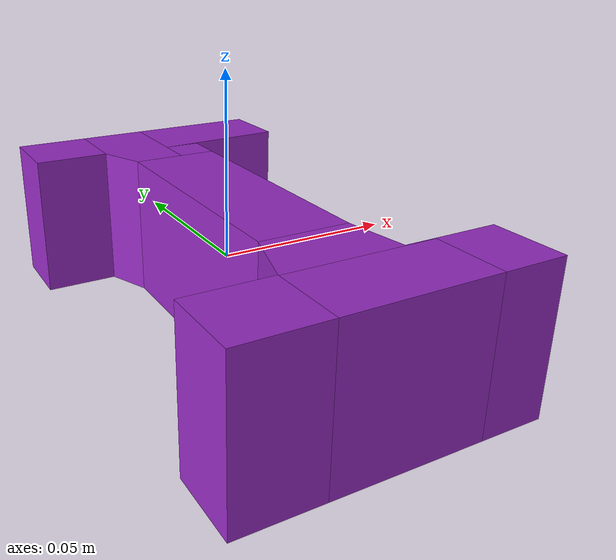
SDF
<?xml version='1.0' encoding='UTF-8'?>
<!-- This SDF was autogenerated by obj_to_drake_sdf.py -->
<sdf version="1.7">
  <model name="smaller_i">
    <link name="smaller_i">
      <inertial>
        <pose>0 0 0 0 0 0</pose>
        <mass>0.2</mass>
        <inertia>
          <ixx>0.000499957</ixx>
          <iyy>8.8613584e-05</iyy>
          <izz>0.00053523725</izz>
          <ixy>-7.3334235e-07</ixy>
          <ixz>-1.0219036e-22</ixz>
          <iyz>1.8824904e-22</iyz>
        </inertia>
      </inertial>
      <visual name="convex_0">
        <pose>0 0 0 0 0 0</pose>
        <geometry>
          <mesh>
            <uri>smaller_i_convex_0.obj</uri>
          </mesh>
        </geometry>
        <material>
          <diffuse>0.5882352941176471 0.17254901960784313 0.7607843137254902 1</diffuse>
        </material>
      </visual>
      <collision name="convex_0_volume">
        <pose>0 0 0 0 0 0</pose>
        <geometry>
          <mesh>
            <uri>smaller_i_convex_0.obj</uri>
          </mesh>
        </geometry>
        <drake:proximity_properties xmlns:drake="uri:drake">
          <drake:compliant_hydroelastic/>
          <drake:hydroelastic_modulus> 3.0e7 </drake:hydroelastic_modulus>
          <drake:mesh_resolution_hint> 0.02 </drake:mesh_resolution_hint>
          <drake:hunt_crossley_dissipation>10</drake:hunt_crossley_dissipation>
          <drake:mu_dynamic>0.5</drake:mu_dynamic>
        </drake:proximity_properties>
      </collision>
      <visual name="convex_1">
        <pose>0 0 0 0 0 0</pose>
        <geometry>
          <mesh>
            <uri>smaller_i_convex_1.obj</uri>
          </mesh>
        </geometry>
        <material>
          <diffuse>0.5882352941176471 0.17254901960784313 0.7607843137254902 1</diffuse>
        </material>
      </visual>
      <collision name="convex_1_volume">
        <pose>0 0 0 0 0 0</pose>
        <geometry>
          <mesh>
            <uri>smaller_i_convex_1.obj</uri>
          </mesh>
        </geometry>
        <drake:proximity_properties xmlns:drake="uri:drake">
          <drake:compliant_hydroelastic/>
          <drake:hydroelastic_modulus> 3.0e7 </drake:hydroelastic_modulus>
          <drake:mesh_resolution_hint> 0.02 </drake:mesh_resolution_hint>
          <drake:hunt_crossley_dissipation>10</drake:hunt_crossley_dissipation>
          <drake:mu_dynamic>0.5</drake:mu_dynamic>
        </drake:proximity_properties>
      </collision>
      <visual name="convex_2">
        <pose>0 0 0 0 0 0</pose>
        <geometry>
          <mesh>
            <uri>smaller_i_convex_2.obj</uri>
          </mesh>
        </geometry>
        <material>
          <diffuse>0.5882352941176471 0.17254901960784313 0.7607843137254902 1</diffuse>
        </material>
      </visual>
      <collision name="convex_2_volume">
        <pose>0 0 0 0 0 0</pose>
        <geometry>
          <mesh>
            <uri>smaller_i_convex_2.obj</uri>
          </mesh>
        </geometry>
        <drake:proximity_properties xmlns:drake="uri:drake">
          <drake:compliant_hydroelastic/>
          <drake:hydroelastic_modulus> 3.0e7 </drake:hydroelastic_modulus>
          <drake:mesh_resolution_hint> 0.02 </drake:mesh_resolution_hint>
          <drake:hunt_crossley_dissipation>10</drake:hunt_crossley_dissipation>
          <drake:mu_dynamic>0.5</drake:mu_dynamic>
        </drake:proximity_properties>
      </collision>
      <visual name="convex_3">
        <pose>0 0 0 0 0 0</pose>
        <geometry>
          <mesh>
            <uri>smaller_i_convex_3.obj</uri>
          </mesh>
        </geometry>
        <material>
          <diffuse>0.5882352941176471 0.17254901960784313 0.7607843137254902 1</diffuse>
        </material>
      </visual>
      <collision name="convex_3_volume">
        <pose>0 0 0 0 0 0</pose>
        <geometry>
          <mesh>
            <uri>smaller_i_convex_3.obj</uri>
          </mesh>
        </geometry>
        <drake:proximity_properties xmlns:drake="uri:drake">
          <drake:compliant_hydroelastic/>
          <drake:hydroelastic_modulus> 3.0e7 </drake:hydroelastic_modulus>
          <drake:mesh_resolution_hint> 0.02 </drake:mesh_resolution_hint>
          <drake:hunt_crossley_dissipation>10</drake:hunt_crossley_dissipation>
          <drake:mu_dynamic>0.5</drake:mu_dynamic>
        </drake:proximity_properties>
      </collision>
      <visual name="convex_4">
        <pose>0 0 0 0 0 0</pose>
        <geometry>
          <mesh>
            <uri>smaller_i_convex_4.obj</uri>
          </mesh>
        </geometry>
        <material>
          <diffuse>0.5882352941176471 0.17254901960784313 0.7607843137254902 1</diffuse>
        </material>
      </visual>
      <collision name="convex_4_volume">
        <pose>0 0 0 0 0 0</pose>
        <geometry>
          <mesh>
            <uri>smaller_i_convex_4.obj</uri>
          </mesh>
        </geometry>
        <drake:proximity_properties xmlns:drake="uri:drake">
          <drake:compliant_hydroelastic/>
          <drake:hydroelastic_modulus> 3.0e7 </drake:hydroelastic_modulus>
          <drake:mesh_resolution_hint> 0.02 </drake:mesh_resolution_hint>
          <drake:hunt_crossley_dissipation>10</drake:hunt_crossley_dissipation>
          <drake:mu_dynamic>0.5</drake:mu_dynamic>
        </drake:proximity_properties>
      </collision>
      <visual name="convex_5">
        <pose>0 0 0 0 0 0</pose>
        <geometry>
          <mesh>
            <uri>smaller_i_convex_5.obj</uri>
          </mesh>
        </geometry>
        <material>
          <diffuse>0.5882352941176471 0.17254901960784313 0.7607843137254902 1</diffuse>
        </material>
      </visual>
      <collision name="convex_5_volume">
        <pose>0 0 0 0 0 0</pose>
        <geometry>
          <mesh>
            <uri>smaller_i_convex_5.obj</uri>
          </mesh>
        </geometry>
        <drake:proximity_properties xmlns:drake="uri:drake">
          <drake:compliant_hydroelastic/>
          <drake:hydroelastic_modulus> 3.0e7 </drake:hydroelastic_modulus>
          <drake:mesh_resolution_hint> 0.02 </drake:mesh_resolution_hint>
          <drake:hunt_crossley_dissipation>10</drake:hunt_crossley_dissipation>
          <drake:mu_dynamic>0.5</drake:mu_dynamic>
        </drake:proximity_properties>
      </collision>
      <visual name="convex_6">
        <pose>0 0 0 0 0 0</pose>
        <geometry>
          <mesh>
            <uri>smaller_i_convex_6.obj</uri>
          </mesh>
        </geometry>
        <material>
          <diffuse>0.5882352941176471 0.17254901960784313 0.7607843137254902 1</diffuse>
        </material>
      </visual>
      <collision name="convex_6_volume">
        <pose>0 0 0 0 0 0</pose>
        <geometry>
          <mesh>
            <uri>smaller_i_convex_6.obj</uri>
          </mesh>
        </geometry>
        <drake:proximity_properties xmlns:drake="uri:drake">
          <drake:compliant_hydroelastic/>
          <drake:hydroelastic_modulus> 3.0e7 </drake:hydroelastic_modulus>
          <drake:mesh_resolution_hint> 0.02 </drake:mesh_resolution_hint>
          <drake:hunt_crossley_dissipation>10</drake:hunt_crossley_dissipation>
          <drake:mu_dynamic>0.5</drake:mu_dynamic>
        </drake:proximity_properties>
      </collision>
      <visual name="convex_7">
        <pose>0 0 0 0 0 0</pose>
        <geometry>
          <mesh>
            <uri>smaller_i_convex_7.obj</uri>
          </mesh>
        </geometry>
        <material>
          <diffuse>0.5882352941176471 0.17254901960784313 0.7607843137254902 1</diffuse>
        </material>
      </visual>
      <collision name="convex_7_volume">
        <pose>0 0 0 0 0 0</pose>
        <geometry>
          <mesh>
            <uri>smaller_i_convex_7.obj</uri>
          </mesh>
        </geometry>
        <drake:proximity_properties xmlns:drake="uri:drake">
          <drake:compliant_hydroelastic/>
          <drake:hydroelastic_modulus> 3.0e7 </drake:hydroelastic_modulus>
          <drake:mesh_resolution_hint> 0.02 </drake:mesh_resolution_hint>
          <drake:hunt_crossley_dissipation>10</drake:hunt_crossley_dissipation>
          <drake:mu_dynamic>0.5</drake:mu_dynamic>
        </drake:proximity_properties>
      </collision>
      <visual name="convex_8">
        <pose>0 0 0 0 0 0</pose>
        <geometry>
          <mesh>
            <uri>smaller_i_convex_8.obj</uri>
          </mesh>
        </geometry>
        <material>
          <diffuse>0.5882352941176471 0.17254901960784313 0.7607843137254902 1</diffuse>
        </material>
      </visual>
      <collision name="convex_8_volume">
        <pose>0 0 0 0 0 0</pose>
        <geometry>
          <mesh>
            <uri>smaller_i_convex_8.obj</uri>
          </mesh>
        </geometry>
        <drake:proximity_properties xmlns:drake="uri:drake">
          <drake:compliant_hydroelastic/>
          <drake:hydroelastic_modulus> 3.0e7 </drake:hydroelastic_modulus>
          <drake:mesh_resolution_hint> 0.02 </drake:mesh_resolution_hint>
          <drake:hunt_crossley_dissipation>10</drake:hunt_crossley_dissipation>
          <drake:mu_dynamic>0.5</drake:mu_dynamic>
        </drake:proximity_properties>
      </collision>
      <visual name="convex_9">
        <pose>0 0 0 0 0 0</pose>
        <geometry>
          <mesh>
            <uri>smaller_i_convex_9.obj</uri>
          </mesh>
        </geometry>
        <material>
          <diffuse>0.5882352941176471 0.17254901960784313 0.7607843137254902 1</diffuse>
        </material>
      </visual>
      <collision name="convex_9_volume">
        <pose>0 0 0 0 0 0</pose>
        <geometry>
          <mesh>
            <uri>smaller_i_convex_9.obj</uri>
          </mesh>
        </geometry>
        <drake:proximity_properties xmlns:drake="uri:drake">
          <drake:compliant_hydroelastic/>
          <drake:hydroelastic_modulus> 3.0e7 </drake:hydroelastic_modulus>
          <drake:mesh_resolution_hint> 0.02 </drake:mesh_resolution_hint>
          <drake:hunt_crossley_dissipation>10</drake:hunt_crossley_dissipation>
          <drake:mu_dynamic>0.5</drake:mu_dynamic>
        </drake:proximity_properties>
      </collision>
    </link>
  </model>
</sdf>
